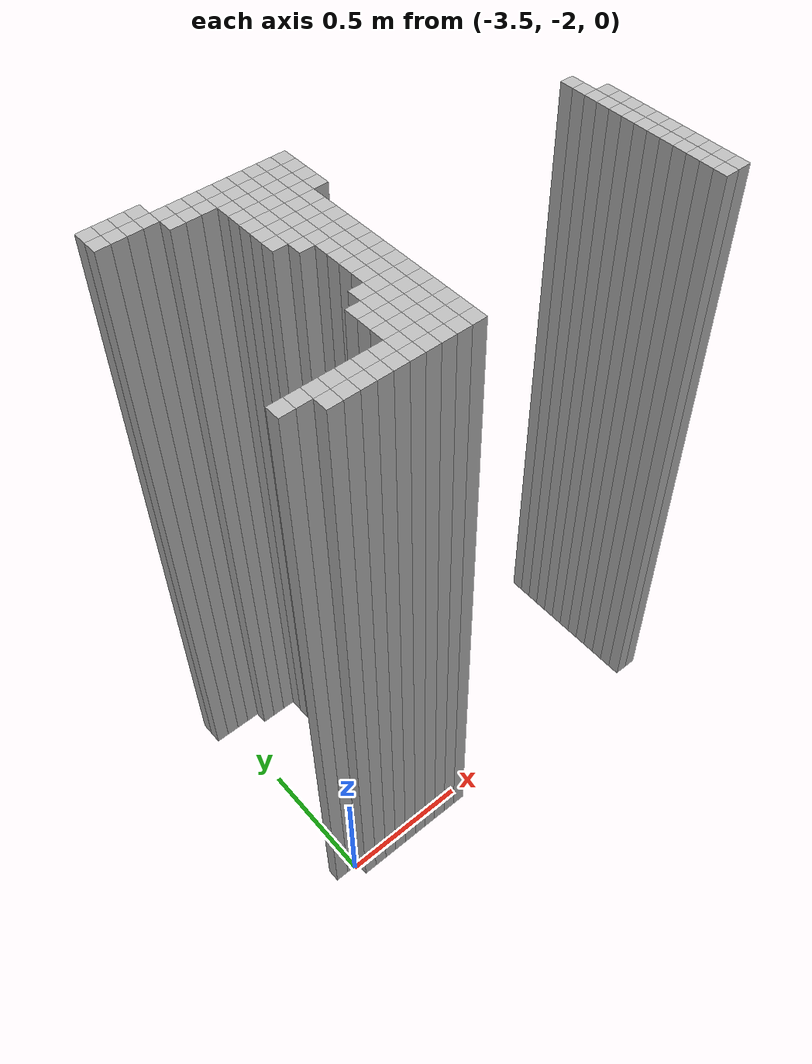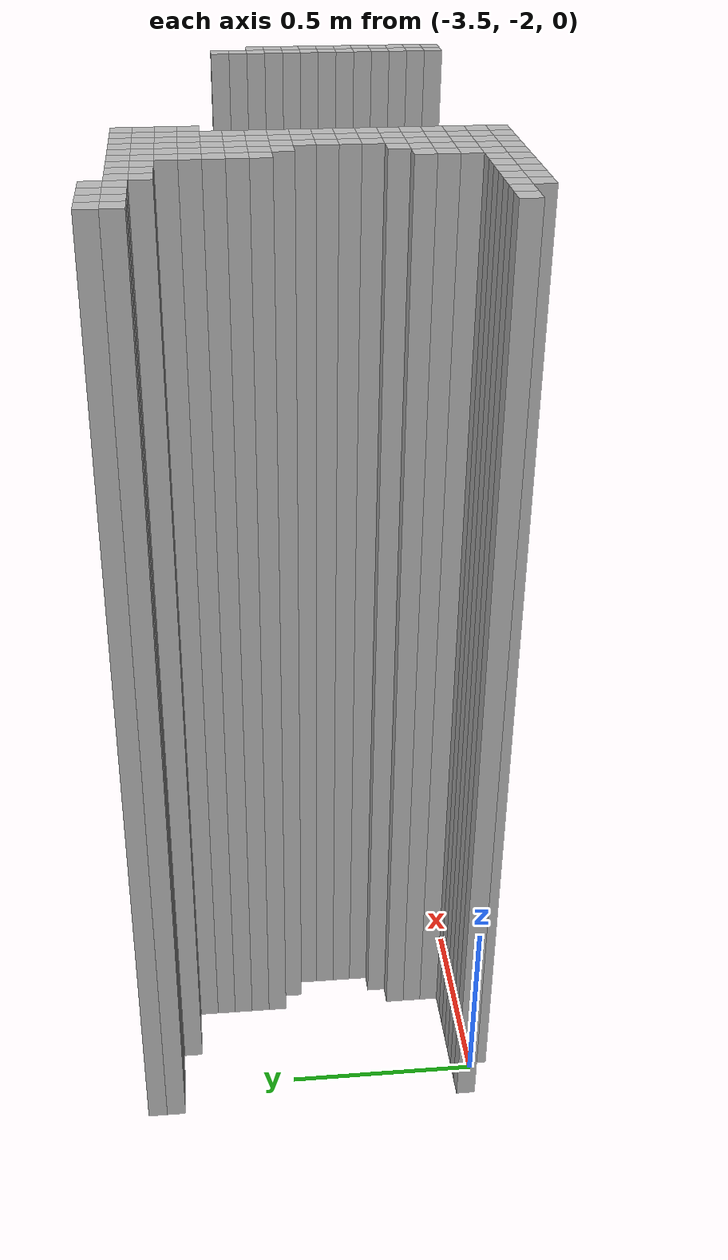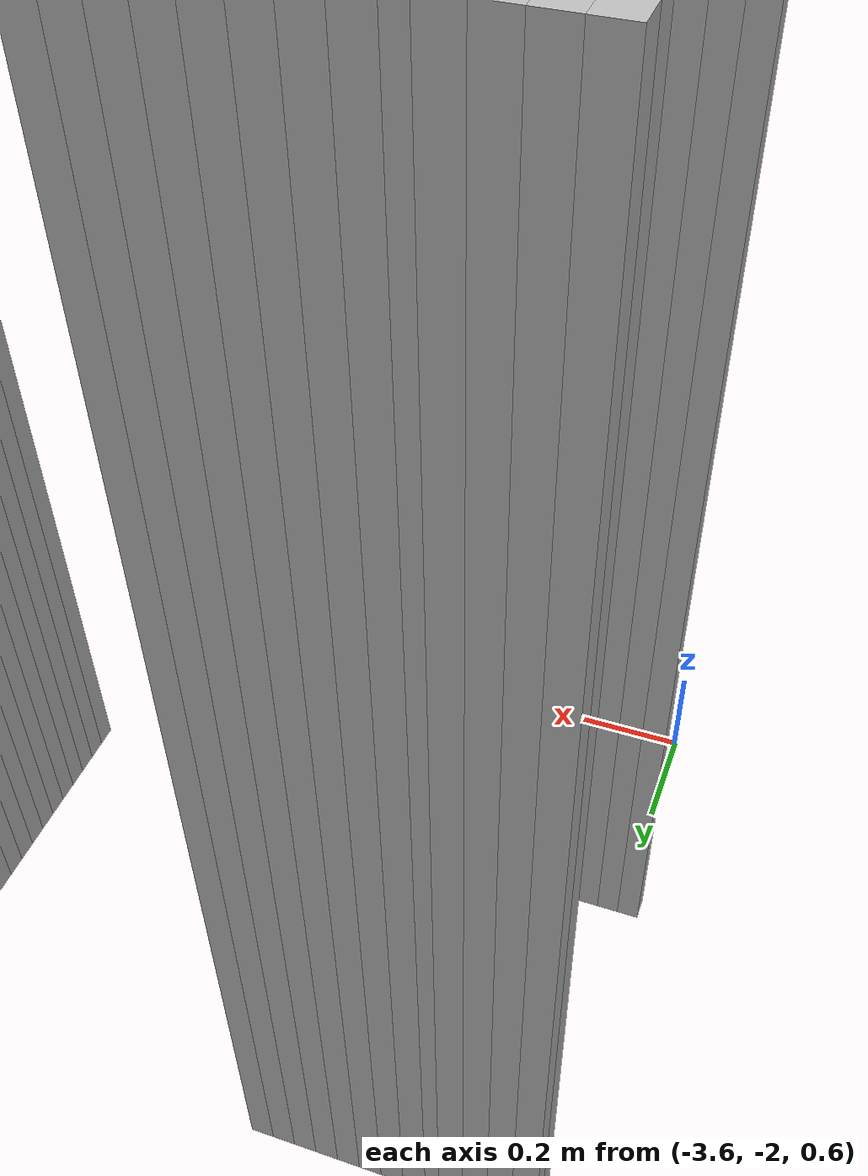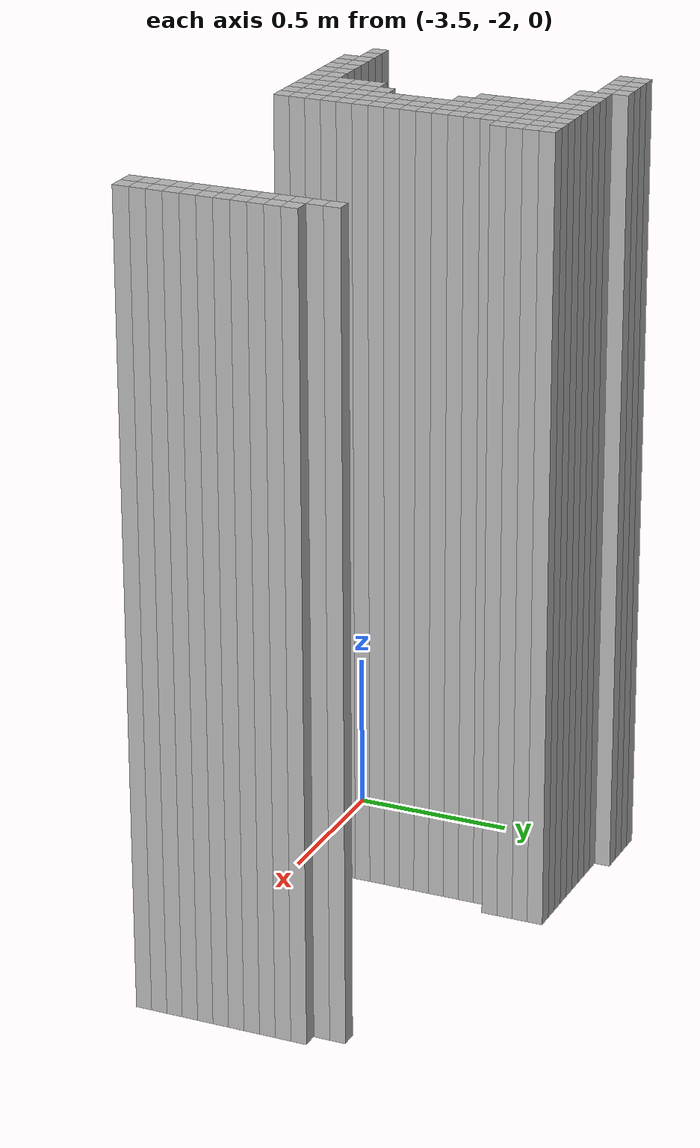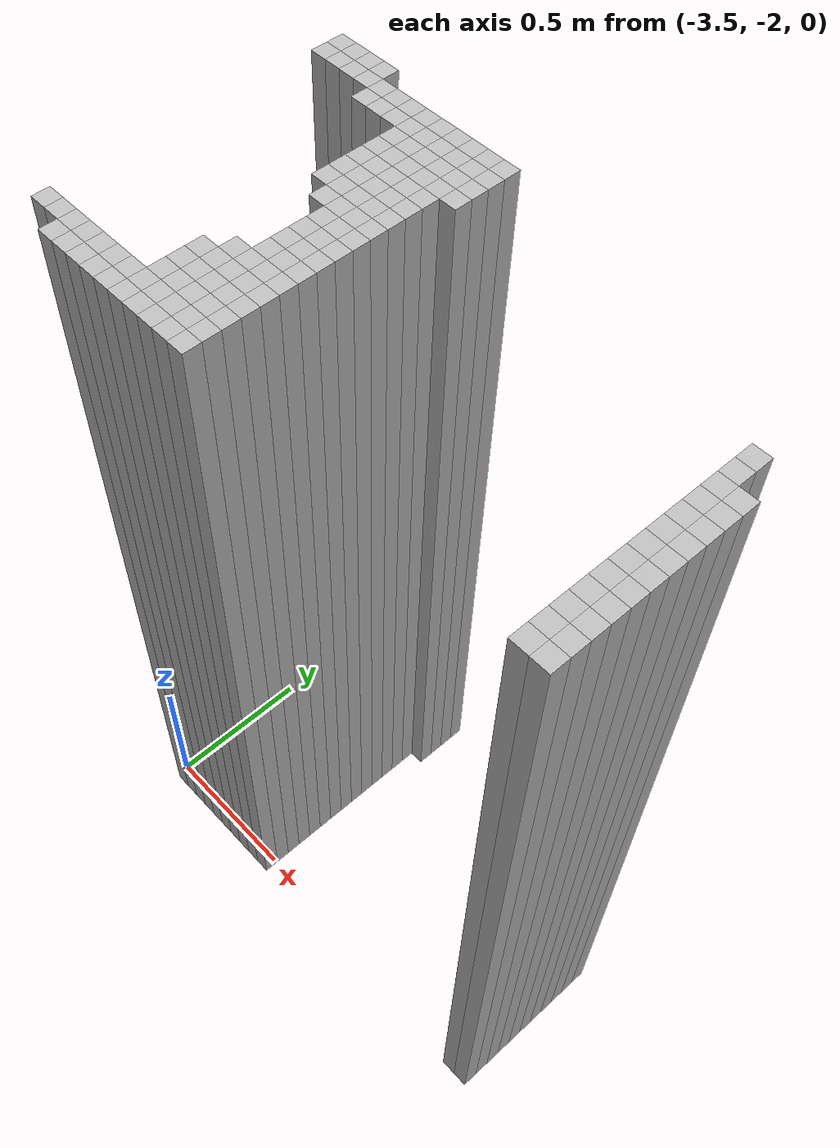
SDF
<sdf version="1.9">
 <world name="map_world">
  <model name="wall_152_176">
   <static>true</static>
   <pose>-3.561 -1.120 1.250 0 0 0</pose>
   <link name="link">
    <collision name="collision"><geometry><box><size>0.050 0.050 2.500</size></box></geometry></collision>
    <visual name="visual"><geometry><box><size>0.050 0.050 2.500</size></box></geometry></visual>
   </link>
  </model>
  <model name="wall_153_176">
   <static>true</static>
   <pose>-3.511 -1.120 1.250 0 0 0</pose>
   <link name="link">
    <collision name="collision"><geometry><box><size>0.050 0.050 2.500</size></box></geometry></collision>
    <visual name="visual"><geometry><box><size>0.050 0.050 2.500</size></box></geometry></visual>
   </link>
  </model>
  <model name="wall_154_176">
   <static>true</static>
   <pose>-3.461 -1.120 1.250 0 0 0</pose>
   <link name="link">
    <collision name="collision"><geometry><box><size>0.050 0.050 2.500</size></box></geometry></collision>
    <visual name="visual"><geometry><box><size>0.050 0.050 2.500</size></box></geometry></visual>
   </link>
  </model>
  <model name="wall_155_176">
   <static>true</static>
   <pose>-3.411 -1.120 1.250 0 0 0</pose>
   <link name="link">
    <collision name="collision"><geometry><box><size>0.050 0.050 2.500</size></box></geometry></collision>
    <visual name="visual"><geometry><box><size>0.050 0.050 2.500</size></box></geometry></visual>
   </link>
  </model>
  <model name="wall_152_177">
   <static>true</static>
   <pose>-3.561 -1.170 1.250 0 0 0</pose>
   <link name="link">
    <collision name="collision"><geometry><box><size>0.050 0.050 2.500</size></box></geometry></collision>
    <visual name="visual"><geometry><box><size>0.050 0.050 2.500</size></box></geometry></visual>
   </link>
  </model>
  <model name="wall_153_177">
   <static>true</static>
   <pose>-3.511 -1.170 1.250 0 0 0</pose>
   <link name="link">
    <collision name="collision"><geometry><box><size>0.050 0.050 2.500</size></box></geometry></collision>
    <visual name="visual"><geometry><box><size>0.050 0.050 2.500</size></box></geometry></visual>
   </link>
  </model>
  <model name="wall_154_177">
   <static>true</static>
   <pose>-3.461 -1.170 1.250 0 0 0</pose>
   <link name="link">
    <collision name="collision"><geometry><box><size>0.050 0.050 2.500</size></box></geometry></collision>
    <visual name="visual"><geometry><box><size>0.050 0.050 2.500</size></box></geometry></visual>
   </link>
  </model>
  <model name="wall_155_177">
   <static>true</static>
   <pose>-3.411 -1.170 1.250 0 0 0</pose>
   <link name="link">
    <collision name="collision"><geometry><box><size>0.050 0.050 2.500</size></box></geometry></collision>
    <visual name="visual"><geometry><box><size>0.050 0.050 2.500</size></box></geometry></visual>
   </link>
  </model>
  <model name="wall_156_177">
   <static>true</static>
   <pose>-3.361 -1.170 1.250 0 0 0</pose>
   <link name="link">
    <collision name="collision"><geometry><box><size>0.050 0.050 2.500</size></box></geometry></collision>
    <visual name="visual"><geometry><box><size>0.050 0.050 2.500</size></box></geometry></visual>
   </link>
  </model>
  <model name="wall_157_177">
   <static>true</static>
   <pose>-3.311 -1.170 1.250 0 0 0</pose>
   <link name="link">
    <collision name="collision"><geometry><box><size>0.050 0.050 2.500</size></box></geometry></collision>
    <visual name="visual"><geometry><box><size>0.050 0.050 2.500</size></box></geometry></visual>
   </link>
  </model>
  <model name="wall_158_177">
   <static>true</static>
   <pose>-3.261 -1.170 1.250 0 0 0</pose>
   <link name="link">
    <collision name="collision"><geometry><box><size>0.050 0.050 2.500</size></box></geometry></collision>
    <visual name="visual"><geometry><box><size>0.050 0.050 2.500</size></box></geometry></visual>
   </link>
  </model>
  <model name="wall_159_177">
   <static>true</static>
   <pose>-3.211 -1.170 1.250 0 0 0</pose>
   <link name="link">
    <collision name="collision"><geometry><box><size>0.050 0.050 2.500</size></box></geometry></collision>
    <visual name="visual"><geometry><box><size>0.050 0.050 2.500</size></box></geometry></visual>
   </link>
  </model>
  <model name="wall_160_177">
   <static>true</static>
   <pose>-3.161 -1.170 1.250 0 0 0</pose>
   <link name="link">
    <collision name="collision"><geometry><box><size>0.050 0.050 2.500</size></box></geometry></collision>
    <visual name="visual"><geometry><box><size>0.050 0.050 2.500</size></box></geometry></visual>
   </link>
  </model>
  <model name="wall_161_177">
   <static>true</static>
   <pose>-3.111 -1.170 1.250 0 0 0</pose>
   <link name="link">
    <collision name="collision"><geometry><box><size>0.050 0.050 2.500</size></box></geometry></collision>
    <visual name="visual"><geometry><box><size>0.050 0.050 2.500</size></box></geometry></visual>
   </link>
  </model>
  <model name="wall_162_177">
   <static>true</static>
   <pose>-3.061 -1.170 1.250 0 0 0</pose>
   <link name="link">
    <collision name="collision"><geometry><box><size>0.050 0.050 2.500</size></box></geometry></collision>
    <visual name="visual"><geometry><box><size>0.050 0.050 2.500</size></box></geometry></visual>
   </link>
  </model>
  <model name="wall_163_177">
   <static>true</static>
   <pose>-3.011 -1.170 1.250 0 0 0</pose>
   <link name="link">
    <collision name="collision"><geometry><box><size>0.050 0.050 2.500</size></box></geometry></collision>
    <visual name="visual"><geometry><box><size>0.050 0.050 2.500</size></box></geometry></visual>
   </link>
  </model>
  <model name="wall_164_177">
   <static>true</static>
   <pose>-2.961 -1.170 1.250 0 0 0</pose>
   <link name="link">
    <collision name="collision"><geometry><box><size>0.050 0.050 2.500</size></box></geometry></collision>
    <visual name="visual"><geometry><box><size>0.050 0.050 2.500</size></box></geometry></visual>
   </link>
  </model>
  <model name="wall_156_178">
   <static>true</static>
   <pose>-3.361 -1.220 1.250 0 0 0</pose>
   <link name="link">
    <collision name="collision"><geometry><box><size>0.050 0.050 2.500</size></box></geometry></collision>
    <visual name="visual"><geometry><box><size>0.050 0.050 2.500</size></box></geometry></visual>
   </link>
  </model>
  <model name="wall_157_178">
   <static>true</static>
   <pose>-3.311 -1.220 1.250 0 0 0</pose>
   <link name="link">
    <collision name="collision"><geometry><box><size>0.050 0.050 2.500</size></box></geometry></collision>
    <visual name="visual"><geometry><box><size>0.050 0.050 2.500</size></box></geometry></visual>
   </link>
  </model>
  <model name="wall_158_178">
   <static>true</static>
   <pose>-3.261 -1.220 1.250 0 0 0</pose>
   <link name="link">
    <collision name="collision"><geometry><box><size>0.050 0.050 2.500</size></box></geometry></collision>
    <visual name="visual"><geometry><box><size>0.050 0.050 2.500</size></box></geometry></visual>
   </link>
  </model>
  <model name="wall_159_178">
   <static>true</static>
   <pose>-3.211 -1.220 1.250 0 0 0</pose>
   <link name="link">
    <collision name="collision"><geometry><box><size>0.050 0.050 2.500</size></box></geometry></collision>
    <visual name="visual"><geometry><box><size>0.050 0.050 2.500</size></box></geometry></visual>
   </link>
  </model>
  <model name="wall_160_178">
   <static>true</static>
   <pose>-3.161 -1.220 1.250 0 0 0</pose>
   <link name="link">
    <collision name="collision"><geometry><box><size>0.050 0.050 2.500</size></box></geometry></collision>
    <visual name="visual"><geometry><box><size>0.050 0.050 2.500</size></box></geometry></visual>
   </link>
  </model>
  <model name="wall_161_178">
   <static>true</static>
   <pose>-3.111 -1.220 1.250 0 0 0</pose>
   <link name="link">
    <collision name="collision"><geometry><box><size>0.050 0.050 2.500</size></box></geometry></collision>
    <visual name="visual"><geometry><box><size>0.050 0.050 2.500</size></box></geometry></visual>
   </link>
  </model>
  <model name="wall_162_178">
   <static>true</static>
   <pose>-3.061 -1.220 1.250 0 0 0</pose>
   <link name="link">
    <collision name="collision"><geometry><box><size>0.050 0.050 2.500</size></box></geometry></collision>
    <visual name="visual"><geometry><box><size>0.050 0.050 2.500</size></box></geometry></visual>
   </link>
  </model>
  <model name="wall_163_178">
   <static>true</static>
   <pose>-3.011 -1.220 1.250 0 0 0</pose>
   <link name="link">
    <collision name="collision"><geometry><box><size>0.050 0.050 2.500</size></box></geometry></collision>
    <visual name="visual"><geometry><box><size>0.050 0.050 2.500</size></box></geometry></visual>
   </link>
  </model>
  <model name="wall_164_178">
   <static>true</static>
   <pose>-2.961 -1.220 1.250 0 0 0</pose>
   <link name="link">
    <collision name="collision"><geometry><box><size>0.050 0.050 2.500</size></box></geometry></collision>
    <visual name="visual"><geometry><box><size>0.050 0.050 2.500</size></box></geometry></visual>
   </link>
  </model>
  <model name="wall_159_179">
   <static>true</static>
   <pose>-3.211 -1.270 1.250 0 0 0</pose>
   <link name="link">
    <collision name="collision"><geometry><box><size>0.050 0.050 2.500</size></box></geometry></collision>
    <visual name="visual"><geometry><box><size>0.050 0.050 2.500</size></box></geometry></visual>
   </link>
  </model>
  <model name="wall_160_179">
   <static>true</static>
   <pose>-3.161 -1.270 1.250 0 0 0</pose>
   <link name="link">
    <collision name="collision"><geometry><box><size>0.050 0.050 2.500</size></box></geometry></collision>
    <visual name="visual"><geometry><box><size>0.050 0.050 2.500</size></box></geometry></visual>
   </link>
  </model>
  <model name="wall_161_179">
   <static>true</static>
   <pose>-3.111 -1.270 1.250 0 0 0</pose>
   <link name="link">
    <collision name="collision"><geometry><box><size>0.050 0.050 2.500</size></box></geometry></collision>
    <visual name="visual"><geometry><box><size>0.050 0.050 2.500</size></box></geometry></visual>
   </link>
  </model>
  <model name="wall_162_179">
   <static>true</static>
   <pose>-3.061 -1.270 1.250 0 0 0</pose>
   <link name="link">
    <collision name="collision"><geometry><box><size>0.050 0.050 2.500</size></box></geometry></collision>
    <visual name="visual"><geometry><box><size>0.050 0.050 2.500</size></box></geometry></visual>
   </link>
  </model>
  <model name="wall_163_179">
   <static>true</static>
   <pose>-3.011 -1.270 1.250 0 0 0</pose>
   <link name="link">
    <collision name="collision"><geometry><box><size>0.050 0.050 2.500</size></box></geometry></collision>
    <visual name="visual"><geometry><box><size>0.050 0.050 2.500</size></box></geometry></visual>
   </link>
  </model>
  <model name="wall_164_179">
   <static>true</static>
   <pose>-2.961 -1.270 1.250 0 0 0</pose>
   <link name="link">
    <collision name="collision"><geometry><box><size>0.050 0.050 2.500</size></box></geometry></collision>
    <visual name="visual"><geometry><box><size>0.050 0.050 2.500</size></box></geometry></visual>
   </link>
  </model>
  <model name="wall_159_180">
   <static>true</static>
   <pose>-3.211 -1.320 1.250 0 0 0</pose>
   <link name="link">
    <collision name="collision"><geometry><box><size>0.050 0.050 2.500</size></box></geometry></collision>
    <visual name="visual"><geometry><box><size>0.050 0.050 2.500</size></box></geometry></visual>
   </link>
  </model>
  <model name="wall_160_180">
   <static>true</static>
   <pose>-3.161 -1.320 1.250 0 0 0</pose>
   <link name="link">
    <collision name="collision"><geometry><box><size>0.050 0.050 2.500</size></box></geometry></collision>
    <visual name="visual"><geometry><box><size>0.050 0.050 2.500</size></box></geometry></visual>
   </link>
  </model>
  <model name="wall_161_180">
   <static>true</static>
   <pose>-3.111 -1.320 1.250 0 0 0</pose>
   <link name="link">
    <collision name="collision"><geometry><box><size>0.050 0.050 2.500</size></box></geometry></collision>
    <visual name="visual"><geometry><box><size>0.050 0.050 2.500</size></box></geometry></visual>
   </link>
  </model>
  <model name="wall_162_180">
   <static>true</static>
   <pose>-3.061 -1.320 1.250 0 0 0</pose>
   <link name="link">
    <collision name="collision"><geometry><box><size>0.050 0.050 2.500</size></box></geometry></collision>
    <visual name="visual"><geometry><box><size>0.050 0.050 2.500</size></box></geometry></visual>
   </link>
  </model>
  <model name="wall_163_180">
   <static>true</static>
   <pose>-3.011 -1.320 1.250 0 0 0</pose>
   <link name="link">
    <collision name="collision"><geometry><box><size>0.050 0.050 2.500</size></box></geometry></collision>
    <visual name="visual"><geometry><box><size>0.050 0.050 2.500</size></box></geometry></visual>
   </link>
  </model>
  <model name="wall_164_180">
   <static>true</static>
   <pose>-2.961 -1.320 1.250 0 0 0</pose>
   <link name="link">
    <collision name="collision"><geometry><box><size>0.050 0.050 2.500</size></box></geometry></collision>
    <visual name="visual"><geometry><box><size>0.050 0.050 2.500</size></box></geometry></visual>
   </link>
  </model>
  <model name="wall_159_181">
   <static>true</static>
   <pose>-3.211 -1.370 1.250 0 0 0</pose>
   <link name="link">
    <collision name="collision"><geometry><box><size>0.050 0.050 2.500</size></box></geometry></collision>
    <visual name="visual"><geometry><box><size>0.050 0.050 2.500</size></box></geometry></visual>
   </link>
  </model>
  <model name="wall_160_181">
   <static>true</static>
   <pose>-3.161 -1.370 1.250 0 0 0</pose>
   <link name="link">
    <collision name="collision"><geometry><box><size>0.050 0.050 2.500</size></box></geometry></collision>
    <visual name="visual"><geometry><box><size>0.050 0.050 2.500</size></box></geometry></visual>
   </link>
  </model>
  <model name="wall_161_181">
   <static>true</static>
   <pose>-3.111 -1.370 1.250 0 0 0</pose>
   <link name="link">
    <collision name="collision"><geometry><box><size>0.050 0.050 2.500</size></box></geometry></collision>
    <visual name="visual"><geometry><box><size>0.050 0.050 2.500</size></box></geometry></visual>
   </link>
  </model>
  <model name="wall_162_181">
   <static>true</static>
   <pose>-3.061 -1.370 1.250 0 0 0</pose>
   <link name="link">
    <collision name="collision"><geometry><box><size>0.050 0.050 2.500</size></box></geometry></collision>
    <visual name="visual"><geometry><box><size>0.050 0.050 2.500</size></box></geometry></visual>
   </link>
  </model>
  <model name="wall_163_181">
   <static>true</static>
   <pose>-3.011 -1.370 1.250 0 0 0</pose>
   <link name="link">
    <collision name="collision"><geometry><box><size>0.050 0.050 2.500</size></box></geometry></collision>
    <visual name="visual"><geometry><box><size>0.050 0.050 2.500</size></box></geometry></visual>
   </link>
  </model>
  <model name="wall_159_182">
   <static>true</static>
   <pose>-3.211 -1.420 1.250 0 0 0</pose>
   <link name="link">
    <collision name="collision"><geometry><box><size>0.050 0.050 2.500</size></box></geometry></collision>
    <visual name="visual"><geometry><box><size>0.050 0.050 2.500</size></box></geometry></visual>
   </link>
  </model>
  <model name="wall_160_182">
   <static>true</static>
   <pose>-3.161 -1.420 1.250 0 0 0</pose>
   <link name="link">
    <collision name="collision"><geometry><box><size>0.050 0.050 2.500</size></box></geometry></collision>
    <visual name="visual"><geometry><box><size>0.050 0.050 2.500</size></box></geometry></visual>
   </link>
  </model>
  <model name="wall_161_182">
   <static>true</static>
   <pose>-3.111 -1.420 1.250 0 0 0</pose>
   <link name="link">
    <collision name="collision"><geometry><box><size>0.050 0.050 2.500</size></box></geometry></collision>
    <visual name="visual"><geometry><box><size>0.050 0.050 2.500</size></box></geometry></visual>
   </link>
  </model>
  <model name="wall_162_182">
   <static>true</static>
   <pose>-3.061 -1.420 1.250 0 0 0</pose>
   <link name="link">
    <collision name="collision"><geometry><box><size>0.050 0.050 2.500</size></box></geometry></collision>
    <visual name="visual"><geometry><box><size>0.050 0.050 2.500</size></box></geometry></visual>
   </link>
  </model>
  <model name="wall_163_182">
   <static>true</static>
   <pose>-3.011 -1.420 1.250 0 0 0</pose>
   <link name="link">
    <collision name="collision"><geometry><box><size>0.050 0.050 2.500</size></box></geometry></collision>
    <visual name="visual"><geometry><box><size>0.050 0.050 2.500</size></box></geometry></visual>
   </link>
  </model>
  <model name="wall_182_182">
   <static>true</static>
   <pose>-2.061 -1.420 1.250 0 0 0</pose>
   <link name="link">
    <collision name="collision"><geometry><box><size>0.050 0.050 2.500</size></box></geometry></collision>
    <visual name="visual"><geometry><box><size>0.050 0.050 2.500</size></box></geometry></visual>
   </link>
  </model>
  <model name="wall_159_183">
   <static>true</static>
   <pose>-3.211 -1.470 1.250 0 0 0</pose>
   <link name="link">
    <collision name="collision"><geometry><box><size>0.050 0.050 2.500</size></box></geometry></collision>
    <visual name="visual"><geometry><box><size>0.050 0.050 2.500</size></box></geometry></visual>
   </link>
  </model>
  <model name="wall_160_183">
   <static>true</static>
   <pose>-3.161 -1.470 1.250 0 0 0</pose>
   <link name="link">
    <collision name="collision"><geometry><box><size>0.050 0.050 2.500</size></box></geometry></collision>
    <visual name="visual"><geometry><box><size>0.050 0.050 2.500</size></box></geometry></visual>
   </link>
  </model>
  <model name="wall_161_183">
   <static>true</static>
   <pose>-3.111 -1.470 1.250 0 0 0</pose>
   <link name="link">
    <collision name="collision"><geometry><box><size>0.050 0.050 2.500</size></box></geometry></collision>
    <visual name="visual"><geometry><box><size>0.050 0.050 2.500</size></box></geometry></visual>
   </link>
  </model>
  <model name="wall_162_183">
   <static>true</static>
   <pose>-3.061 -1.470 1.250 0 0 0</pose>
   <link name="link">
    <collision name="collision"><geometry><box><size>0.050 0.050 2.500</size></box></geometry></collision>
    <visual name="visual"><geometry><box><size>0.050 0.050 2.500</size></box></geometry></visual>
   </link>
  </model>
  <model name="wall_163_183">
   <static>true</static>
   <pose>-3.011 -1.470 1.250 0 0 0</pose>
   <link name="link">
    <collision name="collision"><geometry><box><size>0.050 0.050 2.500</size></box></geometry></collision>
    <visual name="visual"><geometry><box><size>0.050 0.050 2.500</size></box></geometry></visual>
   </link>
  </model>
  <model name="wall_182_183">
   <static>true</static>
   <pose>-2.061 -1.470 1.250 0 0 0</pose>
   <link name="link">
    <collision name="collision"><geometry><box><size>0.050 0.050 2.500</size></box></geometry></collision>
    <visual name="visual"><geometry><box><size>0.050 0.050 2.500</size></box></geometry></visual>
   </link>
  </model>
  <model name="wall_160_184">
   <static>true</static>
   <pose>-3.161 -1.520 1.250 0 0 0</pose>
   <link name="link">
    <collision name="collision"><geometry><box><size>0.050 0.050 2.500</size></box></geometry></collision>
    <visual name="visual"><geometry><box><size>0.050 0.050 2.500</size></box></geometry></visual>
   </link>
  </model>
  <model name="wall_161_184">
   <static>true</static>
   <pose>-3.111 -1.520 1.250 0 0 0</pose>
   <link name="link">
    <collision name="collision"><geometry><box><size>0.050 0.050 2.500</size></box></geometry></collision>
    <visual name="visual"><geometry><box><size>0.050 0.050 2.500</size></box></geometry></visual>
   </link>
  </model>
  <model name="wall_162_184">
   <static>true</static>
   <pose>-3.061 -1.520 1.250 0 0 0</pose>
   <link name="link">
    <collision name="collision"><geometry><box><size>0.050 0.050 2.500</size></box></geometry></collision>
    <visual name="visual"><geometry><box><size>0.050 0.050 2.500</size></box></geometry></visual>
   </link>
  </model>
  <model name="wall_163_184">
   <static>true</static>
   <pose>-3.011 -1.520 1.250 0 0 0</pose>
   <link name="link">
    <collision name="collision"><geometry><box><size>0.050 0.050 2.500</size></box></geometry></collision>
    <visual name="visual"><geometry><box><size>0.050 0.050 2.500</size></box></geometry></visual>
   </link>
  </model>
  <model name="wall_182_184">
   <static>true</static>
   <pose>-2.061 -1.520 1.250 0 0 0</pose>
   <link name="link">
    <collision name="collision"><geometry><box><size>0.050 0.050 2.500</size></box></geometry></collision>
    <visual name="visual"><geometry><box><size>0.050 0.050 2.500</size></box></geometry></visual>
   </link>
  </model>
  <model name="wall_183_184">
   <static>true</static>
   <pose>-2.011 -1.520 1.250 0 0 0</pose>
   <link name="link">
    <collision name="collision"><geometry><box><size>0.050 0.050 2.500</size></box></geometry></collision>
    <visual name="visual"><geometry><box><size>0.050 0.050 2.500</size></box></geometry></visual>
   </link>
  </model>
  <model name="wall_161_185">
   <static>true</static>
   <pose>-3.111 -1.570 1.250 0 0 0</pose>
   <link name="link">
    <collision name="collision"><geometry><box><size>0.050 0.050 2.500</size></box></geometry></collision>
    <visual name="visual"><geometry><box><size>0.050 0.050 2.500</size></box></geometry></visual>
   </link>
  </model>
  <model name="wall_162_185">
   <static>true</static>
   <pose>-3.061 -1.570 1.250 0 0 0</pose>
   <link name="link">
    <collision name="collision"><geometry><box><size>0.050 0.050 2.500</size></box></geometry></collision>
    <visual name="visual"><geometry><box><size>0.050 0.050 2.500</size></box></geometry></visual>
   </link>
  </model>
  <model name="wall_163_185">
   <static>true</static>
   <pose>-3.011 -1.570 1.250 0 0 0</pose>
   <link name="link">
    <collision name="collision"><geometry><box><size>0.050 0.050 2.500</size></box></geometry></collision>
    <visual name="visual"><geometry><box><size>0.050 0.050 2.500</size></box></geometry></visual>
   </link>
  </model>
  <model name="wall_182_185">
   <static>true</static>
   <pose>-2.061 -1.570 1.250 0 0 0</pose>
   <link name="link">
    <collision name="collision"><geometry><box><size>0.050 0.050 2.500</size></box></geometry></collision>
    <visual name="visual"><geometry><box><size>0.050 0.050 2.500</size></box></geometry></visual>
   </link>
  </model>
  <model name="wall_183_185">
   <static>true</static>
   <pose>-2.011 -1.570 1.250 0 0 0</pose>
   <link name="link">
    <collision name="collision"><geometry><box><size>0.050 0.050 2.500</size></box></geometry></collision>
    <visual name="visual"><geometry><box><size>0.050 0.050 2.500</size></box></geometry></visual>
   </link>
  </model>
  <model name="wall_161_186">
   <static>true</static>
   <pose>-3.111 -1.620 1.250 0 0 0</pose>
   <link name="link">
    <collision name="collision"><geometry><box><size>0.050 0.050 2.500</size></box></geometry></collision>
    <visual name="visual"><geometry><box><size>0.050 0.050 2.500</size></box></geometry></visual>
   </link>
  </model>
  <model name="wall_162_186">
   <static>true</static>
   <pose>-3.061 -1.620 1.250 0 0 0</pose>
   <link name="link">
    <collision name="collision"><geometry><box><size>0.050 0.050 2.500</size></box></geometry></collision>
    <visual name="visual"><geometry><box><size>0.050 0.050 2.500</size></box></geometry></visual>
   </link>
  </model>
  <model name="wall_163_186">
   <static>true</static>
   <pose>-3.011 -1.620 1.250 0 0 0</pose>
   <link name="link">
    <collision name="collision"><geometry><box><size>0.050 0.050 2.500</size></box></geometry></collision>
    <visual name="visual"><geometry><box><size>0.050 0.050 2.500</size></box></geometry></visual>
   </link>
  </model>
  <model name="wall_182_186">
   <static>true</static>
   <pose>-2.061 -1.620 1.250 0 0 0</pose>
   <link name="link">
    <collision name="collision"><geometry><box><size>0.050 0.050 2.500</size></box></geometry></collision>
    <visual name="visual"><geometry><box><size>0.050 0.050 2.500</size></box></geometry></visual>
   </link>
  </model>
  <model name="wall_183_186">
   <static>true</static>
   <pose>-2.011 -1.620 1.250 0 0 0</pose>
   <link name="link">
    <collision name="collision"><geometry><box><size>0.050 0.050 2.500</size></box></geometry></collision>
    <visual name="visual"><geometry><box><size>0.050 0.050 2.500</size></box></geometry></visual>
   </link>
  </model>
  <model name="wall_161_187">
   <static>true</static>
   <pose>-3.111 -1.670 1.250 0 0 0</pose>
   <link name="link">
    <collision name="collision"><geometry><box><size>0.050 0.050 2.500</size></box></geometry></collision>
    <visual name="visual"><geometry><box><size>0.050 0.050 2.500</size></box></geometry></visual>
   </link>
  </model>
  <model name="wall_162_187">
   <static>true</static>
   <pose>-3.061 -1.670 1.250 0 0 0</pose>
   <link name="link">
    <collision name="collision"><geometry><box><size>0.050 0.050 2.500</size></box></geometry></collision>
    <visual name="visual"><geometry><box><size>0.050 0.050 2.500</size></box></geometry></visual>
   </link>
  </model>
  <model name="wall_163_187">
   <static>true</static>
   <pose>-3.011 -1.670 1.250 0 0 0</pose>
   <link name="link">
    <collision name="collision"><geometry><box><size>0.050 0.050 2.500</size></box></geometry></collision>
    <visual name="visual"><geometry><box><size>0.050 0.050 2.500</size></box></geometry></visual>
   </link>
  </model>
  <model name="wall_182_187">
   <static>true</static>
   <pose>-2.061 -1.670 1.250 0 0 0</pose>
   <link name="link">
    <collision name="collision"><geometry><box><size>0.050 0.050 2.500</size></box></geometry></collision>
    <visual name="visual"><geometry><box><size>0.050 0.050 2.500</size></box></geometry></visual>
   </link>
  </model>
  <model name="wall_183_187">
   <static>true</static>
   <pose>-2.011 -1.670 1.250 0 0 0</pose>
   <link name="link">
    <collision name="collision"><geometry><box><size>0.050 0.050 2.500</size></box></geometry></collision>
    <visual name="visual"><geometry><box><size>0.050 0.050 2.500</size></box></geometry></visual>
   </link>
  </model>
  <model name="wall_161_188">
   <static>true</static>
   <pose>-3.111 -1.720 1.250 0 0 0</pose>
   <link name="link">
    <collision name="collision"><geometry><box><size>0.050 0.050 2.500</size></box></geometry></collision>
    <visual name="visual"><geometry><box><size>0.050 0.050 2.500</size></box></geometry></visual>
   </link>
  </model>
  <model name="wall_162_188">
   <static>true</static>
   <pose>-3.061 -1.720 1.250 0 0 0</pose>
   <link name="link">
    <collision name="collision"><geometry><box><size>0.050 0.050 2.500</size></box></geometry></collision>
    <visual name="visual"><geometry><box><size>0.050 0.050 2.500</size></box></geometry></visual>
   </link>
  </model>
  <model name="wall_163_188">
   <static>true</static>
   <pose>-3.011 -1.720 1.250 0 0 0</pose>
   <link name="link">
    <collision name="collision"><geometry><box><size>0.050 0.050 2.500</size></box></geometry></collision>
    <visual name="visual"><geometry><box><size>0.050 0.050 2.500</size></box></geometry></visual>
   </link>
  </model>
  <model name="wall_182_188">
   <static>true</static>
   <pose>-2.061 -1.720 1.250 0 0 0</pose>
   <link name="link">
    <collision name="collision"><geometry><box><size>0.050 0.050 2.500</size></box></geometry></collision>
    <visual name="visual"><geometry><box><size>0.050 0.050 2.500</size></box></geometry></visual>
   </link>
  </model>
  <model name="wall_183_188">
   <static>true</static>
   <pose>-2.011 -1.720 1.250 0 0 0</pose>
   <link name="link">
    <collision name="collision"><geometry><box><size>0.050 0.050 2.500</size></box></geometry></collision>
    <visual name="visual"><geometry><box><size>0.050 0.050 2.500</size></box></geometry></visual>
   </link>
  </model>
  <model name="wall_160_189">
   <static>true</static>
   <pose>-3.161 -1.770 1.250 0 0 0</pose>
   <link name="link">
    <collision name="collision"><geometry><box><size>0.050 0.050 2.500</size></box></geometry></collision>
    <visual name="visual"><geometry><box><size>0.050 0.050 2.500</size></box></geometry></visual>
   </link>
  </model>
  <model name="wall_161_189">
   <static>true</static>
   <pose>-3.111 -1.770 1.250 0 0 0</pose>
   <link name="link">
    <collision name="collision"><geometry><box><size>0.050 0.050 2.500</size></box></geometry></collision>
    <visual name="visual"><geometry><box><size>0.050 0.050 2.500</size></box></geometry></visual>
   </link>
  </model>
  <model name="wall_162_189">
   <static>true</static>
   <pose>-3.061 -1.770 1.250 0 0 0</pose>
   <link name="link">
    <collision name="collision"><geometry><box><size>0.050 0.050 2.500</size></box></geometry></collision>
    <visual name="visual"><geometry><box><size>0.050 0.050 2.500</size></box></geometry></visual>
   </link>
  </model>
  <model name="wall_163_189">
   <static>true</static>
   <pose>-3.011 -1.770 1.250 0 0 0</pose>
   <link name="link">
    <collision name="collision"><geometry><box><size>0.050 0.050 2.500</size></box></geometry></collision>
    <visual name="visual"><geometry><box><size>0.050 0.050 2.500</size></box></geometry></visual>
   </link>
  </model>
  <model name="wall_182_189">
   <static>true</static>
   <pose>-2.061 -1.770 1.250 0 0 0</pose>
   <link name="link">
    <collision name="collision"><geometry><box><size>0.050 0.050 2.500</size></box></geometry></collision>
    <visual name="visual"><geometry><box><size>0.050 0.050 2.500</size></box></geometry></visual>
   </link>
  </model>
  <model name="wall_183_189">
   <static>true</static>
   <pose>-2.011 -1.770 1.250 0 0 0</pose>
   <link name="link">
    <collision name="collision"><geometry><box><size>0.050 0.050 2.500</size></box></geometry></collision>
    <visual name="visual"><geometry><box><size>0.050 0.050 2.500</size></box></geometry></visual>
   </link>
  </model>
  <model name="wall_159_190">
   <static>true</static>
   <pose>-3.211 -1.820 1.250 0 0 0</pose>
   <link name="link">
    <collision name="collision"><geometry><box><size>0.050 0.050 2.500</size></box></geometry></collision>
    <visual name="visual"><geometry><box><size>0.050 0.050 2.500</size></box></geometry></visual>
   </link>
  </model>
  <model name="wall_160_190">
   <static>true</static>
   <pose>-3.161 -1.820 1.250 0 0 0</pose>
   <link name="link">
    <collision name="collision"><geometry><box><size>0.050 0.050 2.500</size></box></geometry></collision>
    <visual name="visual"><geometry><box><size>0.050 0.050 2.500</size></box></geometry></visual>
   </link>
  </model>
  <model name="wall_161_190">
   <static>true</static>
   <pose>-3.111 -1.820 1.250 0 0 0</pose>
   <link name="link">
    <collision name="collision"><geometry><box><size>0.050 0.050 2.500</size></box></geometry></collision>
    <visual name="visual"><geometry><box><size>0.050 0.050 2.500</size></box></geometry></visual>
   </link>
  </model>
  <model name="wall_162_190">
   <static>true</static>
   <pose>-3.061 -1.820 1.250 0 0 0</pose>
   <link name="link">
    <collision name="collision"><geometry><box><size>0.050 0.050 2.500</size></box></geometry></collision>
    <visual name="visual"><geometry><box><size>0.050 0.050 2.500</size></box></geometry></visual>
   </link>
  </model>
  <model name="wall_163_190">
   <static>true</static>
   <pose>-3.011 -1.820 1.250 0 0 0</pose>
   <link name="link">
    <collision name="collision"><geometry><box><size>0.050 0.050 2.500</size></box></geometry></collision>
    <visual name="visual"><geometry><box><size>0.050 0.050 2.500</size></box></geometry></visual>
   </link>
  </model>
  <model name="wall_182_190">
   <static>true</static>
   <pose>-2.061 -1.820 1.250 0 0 0</pose>
   <link name="link">
    <collision name="collision"><geometry><box><size>0.050 0.050 2.500</size></box></geometry></collision>
    <visual name="visual"><geometry><box><size>0.050 0.050 2.500</size></box></geometry></visual>
   </link>
  </model>
  <model name="wall_183_190">
   <static>true</static>
   <pose>-2.011 -1.820 1.250 0 0 0</pose>
   <link name="link">
    <collision name="collision"><geometry><box><size>0.050 0.050 2.500</size></box></geometry></collision>
    <visual name="visual"><geometry><box><size>0.050 0.050 2.500</size></box></geometry></visual>
   </link>
  </model>
  <model name="wall_159_191">
   <static>true</static>
   <pose>-3.211 -1.870 1.250 0 0 0</pose>
   <link name="link">
    <collision name="collision"><geometry><box><size>0.050 0.050 2.500</size></box></geometry></collision>
    <visual name="visual"><geometry><box><size>0.050 0.050 2.500</size></box></geometry></visual>
   </link>
  </model>
  <model name="wall_160_191">
   <static>true</static>
   <pose>-3.161 -1.870 1.250 0 0 0</pose>
   <link name="link">
    <collision name="collision"><geometry><box><size>0.050 0.050 2.500</size></box></geometry></collision>
    <visual name="visual"><geometry><box><size>0.050 0.050 2.500</size></box></geometry></visual>
   </link>
  </model>
  <model name="wall_161_191">
   <static>true</static>
   <pose>-3.111 -1.870 1.250 0 0 0</pose>
   <link name="link">
    <collision name="collision"><geometry><box><size>0.050 0.050 2.500</size></box></geometry></collision>
    <visual name="visual"><geometry><box><size>0.050 0.050 2.500</size></box></geometry></visual>
   </link>
  </model>
  <model name="wall_162_191">
   <static>true</static>
   <pose>-3.061 -1.870 1.250 0 0 0</pose>
   <link name="link">
    <collision name="collision"><geometry><box><size>0.050 0.050 2.500</size></box></geometry></collision>
    <visual name="visual"><geometry><box><size>0.050 0.050 2.500</size></box></geometry></visual>
   </link>
  </model>
  <model name="wall_163_191">
   <static>true</static>
   <pose>-3.011 -1.870 1.250 0 0 0</pose>
   <link name="link">
    <collision name="collision"><geometry><box><size>0.050 0.050 2.500</size></box></geometry></collision>
    <visual name="visual"><geometry><box><size>0.050 0.050 2.500</size></box></geometry></visual>
   </link>
  </model>
  <model name="wall_182_191">
   <static>true</static>
   <pose>-2.061 -1.870 1.250 0 0 0</pose>
   <link name="link">
    <collision name="collision"><geometry><box><size>0.050 0.050 2.500</size></box></geometry></collision>
    <visual name="visual"><geometry><box><size>0.050 0.050 2.500</size></box></geometry></visual>
   </link>
  </model>
  <model name="wall_183_191">
   <static>true</static>
   <pose>-2.011 -1.870 1.250 0 0 0</pose>
   <link name="link">
    <collision name="collision"><geometry><box><size>0.050 0.050 2.500</size></box></geometry></collision>
    <visual name="visual"><geometry><box><size>0.050 0.050 2.500</size></box></geometry></visual>
   </link>
  </model>
  <model name="wall_159_192">
   <static>true</static>
   <pose>-3.211 -1.920 1.250 0 0 0</pose>
   <link name="link">
    <collision name="collision"><geometry><box><size>0.050 0.050 2.500</size></box></geometry></collision>
    <visual name="visual"><geometry><box><size>0.050 0.050 2.500</size></box></geometry></visual>
   </link>
  </model>
  <model name="wall_160_192">
   <static>true</static>
   <pose>-3.161 -1.920 1.250 0 0 0</pose>
   <link name="link">
    <collision name="collision"><geometry><box><size>0.050 0.050 2.500</size></box></geometry></collision>
    <visual name="visual"><geometry><box><size>0.050 0.050 2.500</size></box></geometry></visual>
   </link>
  </model>
  <model name="wall_161_192">
   <static>true</static>
   <pose>-3.111 -1.920 1.250 0 0 0</pose>
   <link name="link">
    <collision name="collision"><geometry><box><size>0.050 0.050 2.500</size></box></geometry></collision>
    <visual name="visual"><geometry><box><size>0.050 0.050 2.500</size></box></geometry></visual>
   </link>
  </model>
  <model name="wall_162_192">
   <static>true</static>
   <pose>-3.061 -1.920 1.250 0 0 0</pose>
   <link name="link">
    <collision name="collision"><geometry><box><size>0.050 0.050 2.500</size></box></geometry></collision>
    <visual name="visual"><geometry><box><size>0.050 0.050 2.500</size></box></geometry></visual>
   </link>
  </model>
  <model name="wall_163_192">
   <static>true</static>
   <pose>-3.011 -1.920 1.250 0 0 0</pose>
   <link name="link">
    <collision name="collision"><geometry><box><size>0.050 0.050 2.500</size></box></geometry></collision>
    <visual name="visual"><geometry><box><size>0.050 0.050 2.500</size></box></geometry></visual>
   </link>
  </model>
  <model name="wall_182_192">
   <static>true</static>
   <pose>-2.061 -1.920 1.250 0 0 0</pose>
   <link name="link">
    <collision name="collision"><geometry><box><size>0.050 0.050 2.500</size></box></geometry></collision>
    <visual name="visual"><geometry><box><size>0.050 0.050 2.500</size></box></geometry></visual>
   </link>
  </model>
  <model name="wall_183_192">
   <static>true</static>
   <pose>-2.011 -1.920 1.250 0 0 0</pose>
   <link name="link">
    <collision name="collision"><geometry><box><size>0.050 0.050 2.500</size></box></geometry></collision>
    <visual name="visual"><geometry><box><size>0.050 0.050 2.500</size></box></geometry></visual>
   </link>
  </model>
  <model name="wall_152_193">
   <static>true</static>
   <pose>-3.561 -1.970 1.250 0 0 0</pose>
   <link name="link">
    <collision name="collision"><geometry><box><size>0.050 0.050 2.500</size></box></geometry></collision>
    <visual name="visual"><geometry><box><size>0.050 0.050 2.500</size></box></geometry></visual>
   </link>
  </model>
  <model name="wall_153_193">
   <static>true</static>
   <pose>-3.511 -1.970 1.250 0 0 0</pose>
   <link name="link">
    <collision name="collision"><geometry><box><size>0.050 0.050 2.500</size></box></geometry></collision>
    <visual name="visual"><geometry><box><size>0.050 0.050 2.500</size></box></geometry></visual>
   </link>
  </model>
  <model name="wall_154_193">
   <static>true</static>
   <pose>-3.461 -1.970 1.250 0 0 0</pose>
   <link name="link">
    <collision name="collision"><geometry><box><size>0.050 0.050 2.500</size></box></geometry></collision>
    <visual name="visual"><geometry><box><size>0.050 0.050 2.500</size></box></geometry></visual>
   </link>
  </model>
  <model name="wall_155_193">
   <static>true</static>
   <pose>-3.411 -1.970 1.250 0 0 0</pose>
   <link name="link">
    <collision name="collision"><geometry><box><size>0.050 0.050 2.500</size></box></geometry></collision>
    <visual name="visual"><geometry><box><size>0.050 0.050 2.500</size></box></geometry></visual>
   </link>
  </model>
  <model name="wall_156_193">
   <static>true</static>
   <pose>-3.361 -1.970 1.250 0 0 0</pose>
   <link name="link">
    <collision name="collision"><geometry><box><size>0.050 0.050 2.500</size></box></geometry></collision>
    <visual name="visual"><geometry><box><size>0.050 0.050 2.500</size></box></geometry></visual>
   </link>
  </model>
  <model name="wall_157_193">
   <static>true</static>
   <pose>-3.311 -1.970 1.250 0 0 0</pose>
   <link name="link">
    <collision name="collision"><geometry><box><size>0.050 0.050 2.500</size></box></geometry></collision>
    <visual name="visual"><geometry><box><size>0.050 0.050 2.500</size></box></geometry></visual>
   </link>
  </model>
  <model name="wall_158_193">
   <static>true</static>
   <pose>-3.261 -1.970 1.250 0 0 0</pose>
   <link name="link">
    <collision name="collision"><geometry><box><size>0.050 0.050 2.500</size></box></geometry></collision>
    <visual name="visual"><geometry><box><size>0.050 0.050 2.500</size></box></geometry></visual>
   </link>
  </model>
  <model name="wall_159_193">
   <static>true</static>
   <pose>-3.211 -1.970 1.250 0 0 0</pose>
   <link name="link">
    <collision name="collision"><geometry><box><size>0.050 0.050 2.500</size></box></geometry></collision>
    <visual name="visual"><geometry><box><size>0.050 0.050 2.500</size></box></geometry></visual>
   </link>
  </model>
  <model name="wall_160_193">
   <static>true</static>
   <pose>-3.161 -1.970 1.250 0 0 0</pose>
   <link name="link">
    <collision name="collision"><geometry><box><size>0.050 0.050 2.500</size></box></geometry></collision>
    <visual name="visual"><geometry><box><size>0.050 0.050 2.500</size></box></geometry></visual>
   </link>
  </model>
  <model name="wall_161_193">
   <static>true</static>
   <pose>-3.111 -1.970 1.250 0 0 0</pose>
   <link name="link">
    <collision name="collision"><geometry><box><size>0.050 0.050 2.500</size></box></geometry></collision>
    <visual name="visual"><geometry><box><size>0.050 0.050 2.500</size></box></geometry></visual>
   </link>
  </model>
  <model name="wall_162_193">
   <static>true</static>
   <pose>-3.061 -1.970 1.250 0 0 0</pose>
   <link name="link">
    <collision name="collision"><geometry><box><size>0.050 0.050 2.500</size></box></geometry></collision>
    <visual name="visual"><geometry><box><size>0.050 0.050 2.500</size></box></geometry></visual>
   </link>
  </model>
  <model name="wall_163_193">
   <static>true</static>
   <pose>-3.011 -1.970 1.250 0 0 0</pose>
   <link name="link">
    <collision name="collision"><geometry><box><size>0.050 0.050 2.500</size></box></geometry></collision>
    <visual name="visual"><geometry><box><size>0.050 0.050 2.500</size></box></geometry></visual>
   </link>
  </model>
  <model name="wall_182_193">
   <static>true</static>
   <pose>-2.061 -1.970 1.250 0 0 0</pose>
   <link name="link">
    <collision name="collision"><geometry><box><size>0.050 0.050 2.500</size></box></geometry></collision>
    <visual name="visual"><geometry><box><size>0.050 0.050 2.500</size></box></geometry></visual>
   </link>
  </model>
  <model name="wall_183_193">
   <static>true</static>
   <pose>-2.011 -1.970 1.250 0 0 0</pose>
   <link name="link">
    <collision name="collision"><geometry><box><size>0.050 0.050 2.500</size></box></geometry></collision>
    <visual name="visual"><geometry><box><size>0.050 0.050 2.500</size></box></geometry></visual>
   </link>
  </model>
  <model name="wall_154_194">
   <static>true</static>
   <pose>-3.461 -2.020 1.250 0 0 0</pose>
   <link name="link">
    <collision name="collision"><geometry><box><size>0.050 0.050 2.500</size></box></geometry></collision>
    <visual name="visual"><geometry><box><size>0.050 0.050 2.500</size></box></geometry></visual>
   </link>
  </model>
  <model name="wall_155_194">
   <static>true</static>
   <pose>-3.411 -2.020 1.250 0 0 0</pose>
   <link name="link">
    <collision name="collision"><geometry><box><size>0.050 0.050 2.500</size></box></geometry></collision>
    <visual name="visual"><geometry><box><size>0.050 0.050 2.500</size></box></geometry></visual>
   </link>
  </model>
  <model name="wall_156_194">
   <static>true</static>
   <pose>-3.361 -2.020 1.250 0 0 0</pose>
   <link name="link">
    <collision name="collision"><geometry><box><size>0.050 0.050 2.500</size></box></geometry></collision>
    <visual name="visual"><geometry><box><size>0.050 0.050 2.500</size></box></geometry></visual>
   </link>
  </model>
  <model name="wall_157_194">
   <static>true</static>
   <pose>-3.311 -2.020 1.250 0 0 0</pose>
   <link name="link">
    <collision name="collision"><geometry><box><size>0.050 0.050 2.500</size></box></geometry></collision>
    <visual name="visual"><geometry><box><size>0.050 0.050 2.500</size></box></geometry></visual>
   </link>
  </model>
  <model name="wall_158_194">
   <static>true</static>
   <pose>-3.261 -2.020 1.250 0 0 0</pose>
   <link name="link">
    <collision name="collision"><geometry><box><size>0.050 0.050 2.500</size></box></geometry></collision>
    <visual name="visual"><geometry><box><size>0.050 0.050 2.500</size></box></geometry></visual>
   </link>
  </model>
  <model name="wall_159_194">
   <static>true</static>
   <pose>-3.211 -2.020 1.250 0 0 0</pose>
   <link name="link">
    <collision name="collision"><geometry><box><size>0.050 0.050 2.500</size></box></geometry></collision>
    <visual name="visual"><geometry><box><size>0.050 0.050 2.500</size></box></geometry></visual>
   </link>
  </model>
  <model name="wall_160_194">
   <static>true</static>
   <pose>-3.161 -2.020 1.250 0 0 0</pose>
   <link name="link">
    <collision name="collision"><geometry><box><size>0.050 0.050 2.500</size></box></geometry></collision>
    <visual name="visual"><geometry><box><size>0.050 0.050 2.500</size></box></geometry></visual>
   </link>
  </model>
  <model name="wall_161_194">
   <static>true</static>
   <pose>-3.111 -2.020 1.250 0 0 0</pose>
   <link name="link">
    <collision name="collision"><geometry><box><size>0.050 0.050 2.500</size></box></geometry></collision>
    <visual name="visual"><geometry><box><size>0.050 0.050 2.500</size></box></geometry></visual>
   </link>
  </model>
  <model name="wall_162_194">
   <static>true</static>
   <pose>-3.061 -2.020 1.250 0 0 0</pose>
   <link name="link">
    <collision name="collision"><geometry><box><size>0.050 0.050 2.500</size></box></geometry></collision>
    <visual name="visual"><geometry><box><size>0.050 0.050 2.500</size></box></geometry></visual>
   </link>
  </model>
  <model name="wall_163_194">
   <static>true</static>
   <pose>-3.011 -2.020 1.250 0 0 0</pose>
   <link name="link">
    <collision name="collision"><geometry><box><size>0.050 0.050 2.500</size></box></geometry></collision>
    <visual name="visual"><geometry><box><size>0.050 0.050 2.500</size></box></geometry></visual>
   </link>
  </model>
  <model name="wall_182_194">
   <static>true</static>
   <pose>-2.061 -2.020 1.250 0 0 0</pose>
   <link name="link">
    <collision name="collision"><geometry><box><size>0.050 0.050 2.500</size></box></geometry></collision>
    <visual name="visual"><geometry><box><size>0.050 0.050 2.500</size></box></geometry></visual>
   </link>
  </model>
  <model name="wall_183_194">
   <static>true</static>
   <pose>-2.011 -2.020 1.250 0 0 0</pose>
   <link name="link">
    <collision name="collision"><geometry><box><size>0.050 0.050 2.500</size></box></geometry></collision>
    <visual name="visual"><geometry><box><size>0.050 0.050 2.500</size></box></geometry></visual>
   </link>
  </model>
 </world>
</sdf>
